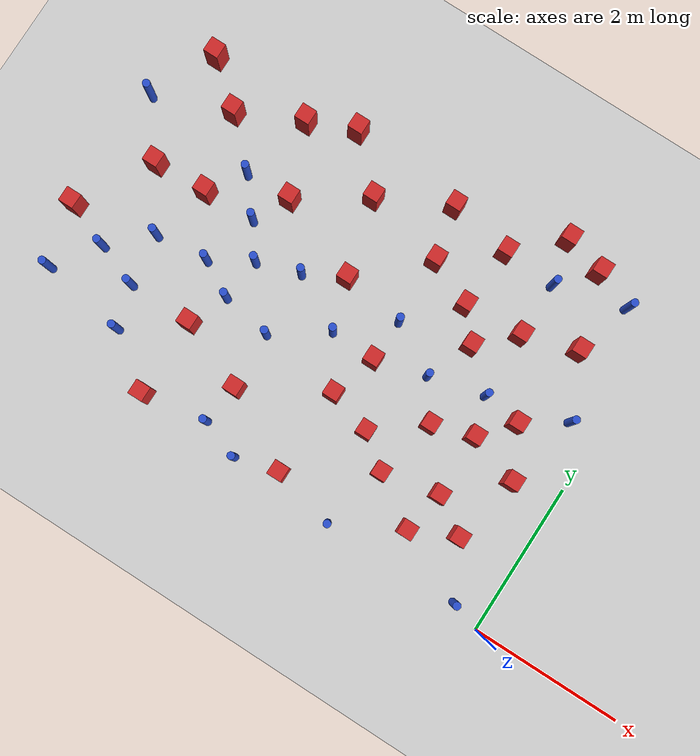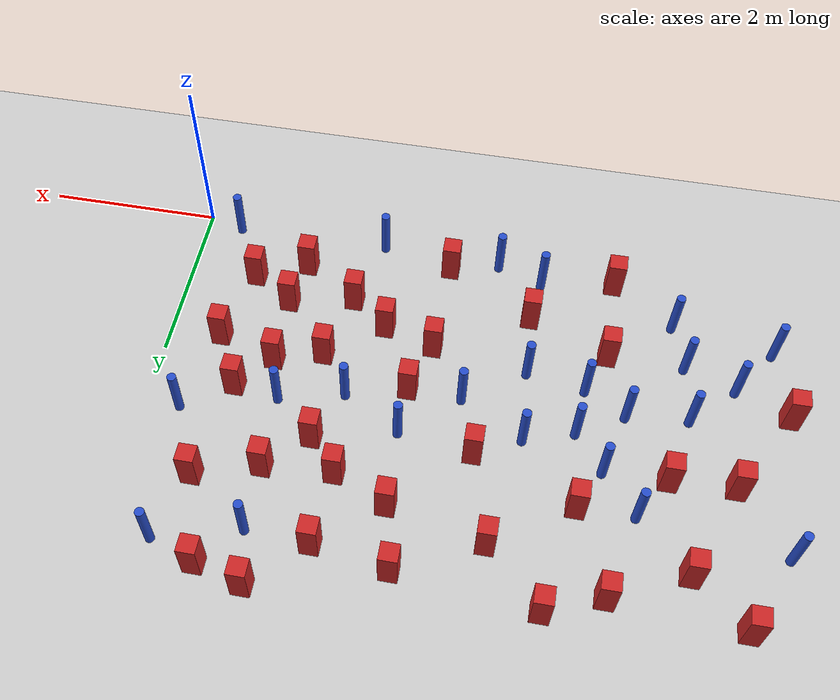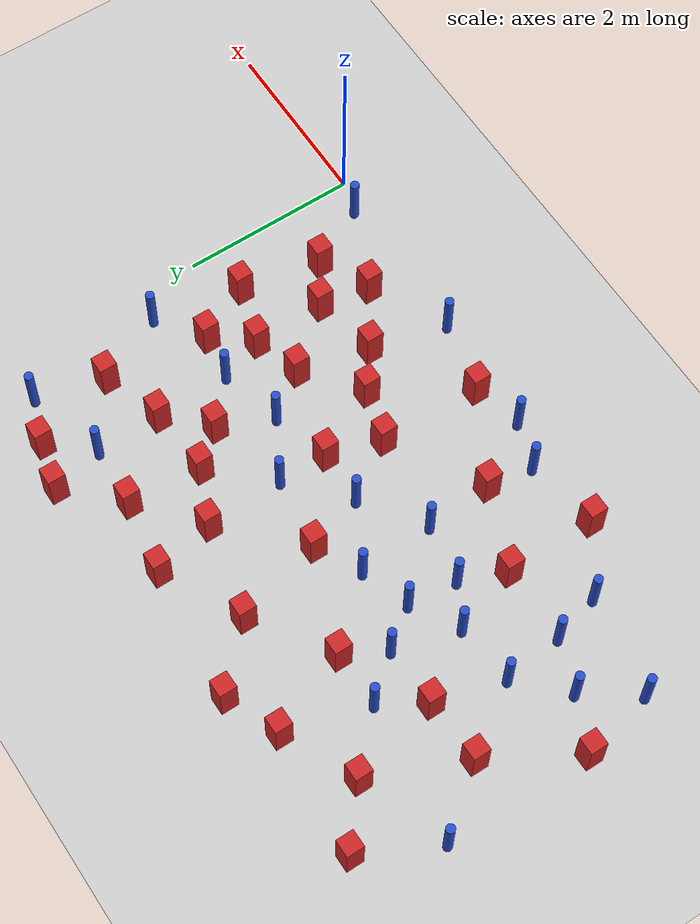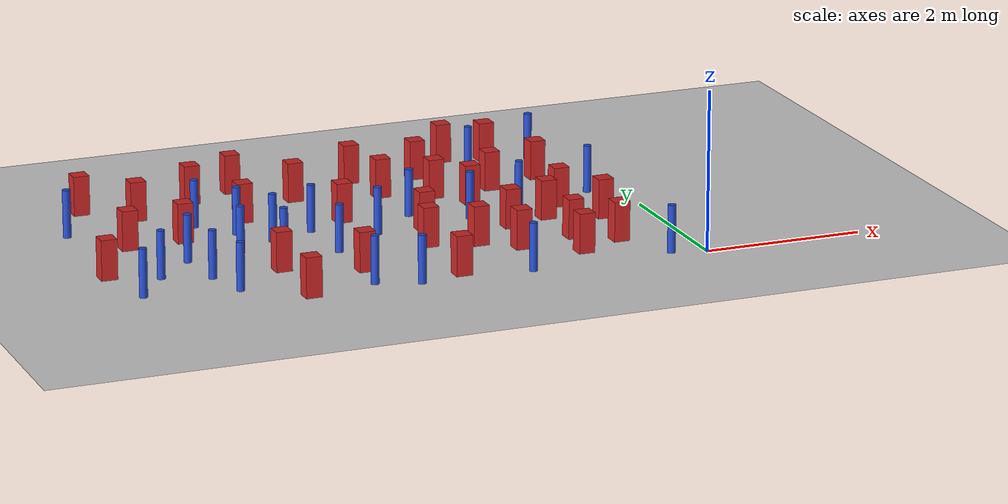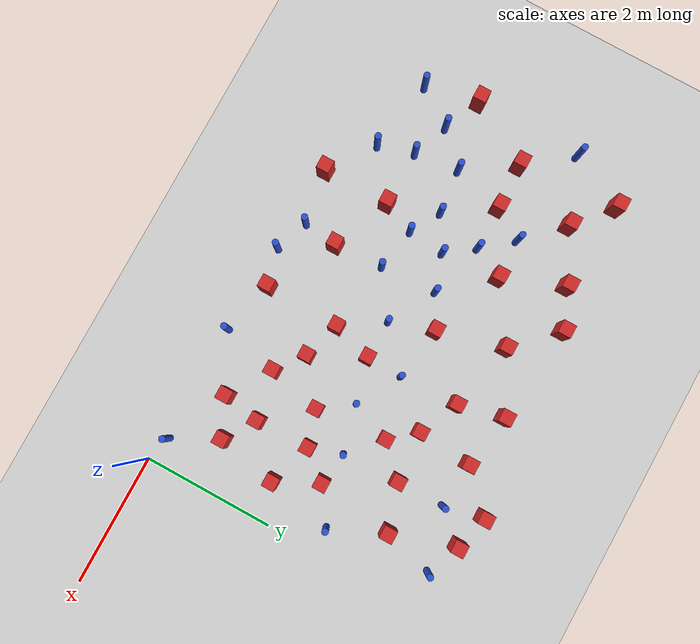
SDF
<sdf version="1.6">
 <world name="default">
  <model name="ground_plane">
   <static>1</static>
   <link name="link">
    <collision name="collision">
     <geometry><plane><normal>0 0 1</normal><size>100 100</size></plane></geometry>
     <surface><friction><ode><mu>100</mu><mu2>50</mu2></ode></friction></surface>
    </collision>
    <visual name="visual">
     <cast_shadows>0</cast_shadows>
     <geometry><plane><normal>0 0 1</normal><size>100 100</size></plane></geometry>
     <material>
      <ambient>1.0 1.0 1.0 1.0</ambient>
      <diffuse>0.8 0.8 0.8 1.0</diffuse>
      <specular>0.01 0.01 0.01 1.000000</specular>
     </material>
    </visual>
   </link>
  </model>
  <model name="square_post_obstacle8">
   <static>true</static>
   <pose>-1.27417712058 1.95908993883 1.91545236811e-07 -7.35059704564e-06 1.12565212e-07 2.39332434364e-05</pose>
   <link name="link">
    <pose>0 0 0.25 0 -0 0</pose>
    <inertial>
     <mass>100</mass>
     <inertia>
      <ixx>0.166667</ixx>
      <ixy>0</ixy>
      <ixz>0</ixz>
      <iyy>0.166667</iyy>
      <iyz>0</iyz>
      <izz>0.166667</izz>
     </inertia>
    </inertial>
    <collision name="collision"><geometry><box><size>.2 .2 .5</size></box></geometry></collision>
    <visual name="visual">
     <geometry><box><size>.2 .2 .5</size></box></geometry>
     <material>
      <script><name>Gazebo/Red</name><uri>file://media/materials/scripts/gazebo.material</uri></script>
     </material>
    </visual>
   </link>
  </model>
  <model name="pole_obstacle7">
   <static>true</static>
   <pose>-6.93572072231 3.38075076219 7.38925637345e-09 -8.47170692798e-08 1.24976764937e-08 -1.74513093023e-07</pose>
   <link name="link">
    <pose>0 0 0.3 0 -0 0</pose>
    <inertial>
     <mass>1</mass>
     <inertia><ixx>0.145833</ixx><ixy>0</ixy><ixz>0</ixz><iyy>0.145833</iyy><iyz>0</iyz><izz>0.125</izz></inertia>
    </inertial>
    <collision name="collision">
     <geometry><cylinder><radius>0.05</radius><length>.6</length></cylinder></geometry>
    </collision>
    <visual name="visual">
     <geometry><cylinder><radius>0.05</radius><length>.6</length></cylinder></geometry>
     <material>
      <script><name>Gazebo/Blue</name><uri>file://media/materials/scripts/gazebo.material</uri></script>
     </material>
    </visual>
   </link>
  </model>
  <model name="square_post_obstacle25">
   <static>true</static>
   <pose>-2.23684656271 3.26121554226 1.91545236811e-07 -7.35059704564e-06 1.12565212e-07 2.39332434364e-05</pose>
   <link name="link">
    <pose>0 0 0.25 0 -0 0</pose>
    <inertial>
     <mass>100</mass>
     <inertia>
      <ixx>0.166667</ixx>
      <ixy>0</ixy>
      <ixz>0</ixz>
      <iyy>0.166667</iyy>
      <iyz>0</iyz>
      <izz>0.166667</izz>
     </inertia>
    </inertial>
    <collision name="collision"><geometry><box><size>.2 .2 .5</size></box></geometry></collision>
    <visual name="visual">
     <geometry><box><size>.2 .2 .5</size></box></geometry>
     <material>
      <script><name>Gazebo/Red</name><uri>file://media/materials/scripts/gazebo.material</uri></script>
     </material>
    </visual>
   </link>
  </model>
  <model name="square_post_obstacle32">
   <static>true</static>
   <pose>-2.8382749133 3.53318739556 1.91545236811e-07 -7.35059704564e-06 1.12565212e-07 2.39332434364e-05</pose>
   <link name="link">
    <pose>0 0 0.25 0 -0 0</pose>
    <inertial>
     <mass>100</mass>
     <inertia>
      <ixx>0.166667</ixx>
      <ixy>0</ixy>
      <ixz>0</ixz>
      <iyy>0.166667</iyy>
      <iyz>0</iyz>
      <izz>0.166667</izz>
     </inertia>
    </inertial>
    <collision name="collision"><geometry><box><size>.2 .2 .5</size></box></geometry></collision>
    <visual name="visual">
     <geometry><box><size>.2 .2 .5</size></box></geometry>
     <material>
      <script><name>Gazebo/Red</name><uri>file://media/materials/scripts/gazebo.material</uri></script>
     </material>
    </visual>
   </link>
  </model>
  <model name="pole_obstacle31">
   <static>true</static>
   <pose>-6.779967507 0.892826970591 7.38925637345e-09 -8.47170692799e-08 1.24976765038e-08 -1.74513093018e-07</pose>
   <link name="link">
    <pose>0 0 0.3 0 -0 0</pose>
    <inertial>
     <mass>1</mass>
     <inertia><ixx>0.145833</ixx><ixy>0</ixy><ixz>0</ixz><iyy>0.145833</iyy><iyz>0</iyz><izz>0.125</izz></inertia>
    </inertial>
    <collision name="collision">
     <geometry><cylinder><radius>0.05</radius><length>.6</length></cylinder></geometry>
    </collision>
    <visual name="visual">
     <geometry><cylinder><radius>0.05</radius><length>.6</length></cylinder></geometry>
     <material>
      <script><name>Gazebo/Blue</name><uri>file://media/materials/scripts/gazebo.material</uri></script>
     </material>
    </visual>
   </link>
  </model>
  <model name="pole_obstacle32">
   <static>true</static>
   <pose>-0.390194337899 2.73719840761 7.38925637345e-09 -8.471706928e-08 1.24976765084e-08 -1.74513093017e-07</pose>
   <link name="link">
    <pose>0 0 0.3 0 -0 0</pose>
    <inertial>
     <mass>1</mass>
     <inertia><ixx>0.145833</ixx><ixy>0</ixy><ixz>0</ixz><iyy>0.145833</iyy><iyz>0</iyz><izz>0.125</izz></inertia>
    </inertial>
    <collision name="collision">
     <geometry><cylinder><radius>0.05</radius><length>.6</length></cylinder></geometry>
    </collision>
    <visual name="visual">
     <geometry><cylinder><radius>0.05</radius><length>.6</length></cylinder></geometry>
     <material>
      <script><name>Gazebo/Blue</name><uri>file://media/materials/scripts/gazebo.material</uri></script>
     </material>
    </visual>
   </link>
  </model>
  <model name="square_post_obstacle41">
   <static>true</static>
   <pose>-4.94955158628 1.25042824308 1.91545236811e-07 -7.35059704564e-06 1.12565212e-07 2.39332434364e-05</pose>
   <link name="link">
    <pose>0 0 0.25 0 -0 0</pose>
    <inertial>
     <mass>100</mass>
     <inertia>
      <ixx>0.166667</ixx>
      <ixy>0</ixy>
      <ixz>0</ixz>
      <iyy>0.166667</iyy>
      <iyz>0</iyz>
      <izz>0.166667</izz>
     </inertia>
    </inertial>
    <collision name="collision"><geometry><box><size>.2 .2 .5</size></box></geometry></collision>
    <visual name="visual">
     <geometry><box><size>.2 .2 .5</size></box></geometry>
     <material>
      <script><name>Gazebo/Red</name><uri>file://media/materials/scripts/gazebo.material</uri></script>
     </material>
    </visual>
   </link>
  </model>
  <model name="pole_obstacle45">
   <static>true</static>
   <pose>-4.68416575472 2.31204584274 7.38925637345e-09 -8.47170692798e-08 1.24976764937e-08 -1.74513093023e-07</pose>
   <link name="link">
    <pose>0 0 0.3 0 -0 0</pose>
    <inertial>
     <mass>1</mass>
     <inertia><ixx>0.145833</ixx><ixy>0</ixy><ixz>0</ixz><iyy>0.145833</iyy><iyz>0</iyz><izz>0.125</izz></inertia>
    </inertial>
    <collision name="collision">
     <geometry><cylinder><radius>0.05</radius><length>.6</length></cylinder></geometry>
    </collision>
    <visual name="visual">
     <geometry><cylinder><radius>0.05</radius><length>.6</length></cylinder></geometry>
     <material>
      <script><name>Gazebo/Blue</name><uri>file://media/materials/scripts/gazebo.material</uri></script>
     </material>
    </visual>
   </link>
  </model>
  <model name="square_post_obstacle43">
   <static>true</static>
   <pose>-1.36037888251 0.567482634678 1.91545236811e-07 -7.35059704564e-06 1.12565212e-07 2.39332434364e-05</pose>
   <link name="link">
    <pose>0 0 0.25 0 -0 0</pose>
    <inertial>
     <mass>100</mass>
     <inertia>
      <ixx>0.166667</ixx>
      <ixy>0</ixy>
      <ixz>0</ixz>
      <iyy>0.166667</iyy>
      <iyz>0</iyz>
      <izz>0.166667</izz>
     </inertia>
    </inertial>
    <collision name="collision"><geometry><box><size>.2 .2 .5</size></box></geometry></collision>
    <visual name="visual">
     <geometry><box><size>.2 .2 .5</size></box></geometry>
     <material>
      <script><name>Gazebo/Red</name><uri>file://media/materials/scripts/gazebo.material</uri></script>
     </material>
    </visual>
   </link>
  </model>
  <model name="square_post_obstacle53">
   <static>true</static>
   <pose>-6.51448656168 4.22937311648 1.91545236811e-07 -7.35059704564e-06 1.12565212e-07 2.39332434364e-05</pose>
   <link name="link">
    <pose>0 0 0.25 0 -0 0</pose>
    <inertial>
     <mass>100</mass>
     <inertia>
      <ixx>0.166667</ixx>
      <ixy>0</ixy>
      <ixz>0</ixz>
      <iyy>0.166667</iyy>
      <iyz>0</iyz>
      <izz>0.166667</izz>
     </inertia>
    </inertial>
    <collision name="collision"><geometry><box><size>.2 .2 .5</size></box></geometry></collision>
    <visual name="visual">
     <geometry><box><size>.2 .2 .5</size></box></geometry>
     <material>
      <script><name>Gazebo/Red</name><uri>file://media/materials/scripts/gazebo.material</uri></script>
     </material>
    </visual>
   </link>
  </model>
  <model name="pole_obstacle51">
   <static>true</static>
   <pose>-4.08297279201 1.63119257298 7.38925637345e-09 -8.471706928e-08 1.24976765134e-08 -1.74513093015e-07</pose>
   <link name="link">
    <pose>0 0 0.3 0 -0 0</pose>
    <inertial>
     <mass>1</mass>
     <inertia><ixx>0.145833</ixx><ixy>0</ixy><ixz>0</ixz><iyy>0.145833</iyy><iyz>0</iyz><izz>0.125</izz></inertia>
    </inertial>
    <collision name="collision">
     <geometry><cylinder><radius>0.05</radius><length>.6</length></cylinder></geometry>
    </collision>
    <visual name="visual">
     <geometry><cylinder><radius>0.05</radius><length>.6</length></cylinder></geometry>
     <material>
      <script><name>Gazebo/Blue</name><uri>file://media/materials/scripts/gazebo.material</uri></script>
     </material>
    </visual>
   </link>
  </model>
  <model name="square_post_obstacle56">
   <static>true</static>
   <pose>-5.94072684718 3.74862928689 1.91545236811e-07 -7.35059704564e-06 1.12565212e-07 2.39332434364e-05</pose>
   <link name="link">
    <pose>0 0 0.25 0 -0 0</pose>
    <inertial>
     <mass>100</mass>
     <inertia>
      <ixx>0.166667</ixx>
      <ixy>0</ixy>
      <ixz>0</ixz>
      <iyy>0.166667</iyy>
      <iyz>0</iyz>
      <izz>0.166667</izz>
     </inertia>
    </inertial>
    <collision name="collision"><geometry><box><size>.2 .2 .5</size></box></geometry></collision>
    <visual name="visual">
     <geometry><box><size>.2 .2 .5</size></box></geometry>
     <material>
      <script><name>Gazebo/Red</name><uri>file://media/materials/scripts/gazebo.material</uri></script>
     </material>
    </visual>
   </link>
  </model>
  <model name="pole_obstacle55">
   <static>true</static>
   <pose>-4.1289250397 2.49557274334 7.38925637345e-09 -8.47170692798e-08 1.24976764937e-08 -1.74513093023e-07</pose>
   <link name="link">
    <pose>0 0 0.3 0 -0 0</pose>
    <inertial>
     <mass>1</mass>
     <inertia><ixx>0.145833</ixx><ixy>0</ixy><ixz>0</ixz><iyy>0.145833</iyy><iyz>0</iyz><izz>0.125</izz></inertia>
    </inertial>
    <collision name="collision">
     <geometry><cylinder><radius>0.05</radius><length>.6</length></cylinder></geometry>
    </collision>
    <visual name="visual">
     <geometry><cylinder><radius>0.05</radius><length>.6</length></cylinder></geometry>
     <material>
      <script><name>Gazebo/Blue</name><uri>file://media/materials/scripts/gazebo.material</uri></script>
     </material>
    </visual>
   </link>
  </model>
  <model name="square_post_obstacle58">
   <static>true</static>
   <pose>-1.99831229838 0.981830670515 1.91545236811e-07 -7.35059704564e-06 1.12565212e-07 2.39332434364e-05</pose>
   <link name="link">
    <pose>0 0 0.25 0 -0 0</pose>
    <inertial>
     <mass>100</mass>
     <inertia>
      <ixx>0.166667</ixx>
      <ixy>0</ixy>
      <ixz>0</ixz>
      <iyy>0.166667</iyy>
      <iyz>0</iyz>
      <izz>0.166667</izz>
     </inertia>
    </inertial>
    <collision name="collision"><geometry><box><size>.2 .2 .5</size></box></geometry></collision>
    <visual name="visual">
     <geometry><box><size>.2 .2 .5</size></box></geometry>
     <material>
      <script><name>Gazebo/Red</name><uri>file://media/materials/scripts/gazebo.material</uri></script>
     </material>
    </visual>
   </link>
  </model>
  <model name="pole_obstacle59">
   <static>true</static>
   <pose>-5.38037622589 3.19111112112 7.38925637345e-09 -8.47170692798e-08 1.24976764937e-08 -1.74513093023e-07</pose>
   <link name="link">
    <pose>0 0 0.3 0 -0 0</pose>
    <inertial>
     <mass>1</mass>
     <inertia><ixx>0.145833</ixx><ixy>0</ixy><ixz>0</ixz><iyy>0.145833</iyy><iyz>0</iyz><izz>0.125</izz></inertia>
    </inertial>
    <collision name="collision">
     <geometry><cylinder><radius>0.05</radius><length>.6</length></cylinder></geometry>
    </collision>
    <visual name="visual">
     <geometry><cylinder><radius>0.05</radius><length>.6</length></cylinder></geometry>
     <material>
      <script><name>Gazebo/Blue</name><uri>file://media/materials/scripts/gazebo.material</uri></script>
     </material>
    </visual>
   </link>
  </model>
  <model name="square_post_obstacle68">
   <static>true</static>
   <pose>-4.75964753927 3.20274390699 1.91545236811e-07 -7.35059704564e-06 1.12565212e-07 2.39332434364e-05</pose>
   <link name="link">
    <pose>0 0 0.25 0 -0 0</pose>
    <inertial>
     <mass>100</mass>
     <inertia>
      <ixx>0.166667</ixx>
      <ixy>0</ixy>
      <ixz>0</ixz>
      <iyy>0.166667</iyy>
      <iyz>0</iyz>
      <izz>0.166667</izz>
     </inertia>
    </inertial>
    <collision name="collision"><geometry><box><size>.2 .2 .5</size></box></geometry></collision>
    <visual name="visual">
     <geometry><box><size>.2 .2 .5</size></box></geometry>
     <material>
      <script><name>Gazebo/Red</name><uri>file://media/materials/scripts/gazebo.material</uri></script>
     </material>
    </visual>
   </link>
  </model>
  <model name="square_post_obstacle69">
   <static>true</static>
   <pose>-1.46908731833 3.31484281986 1.91545236811e-07 -7.35059704564e-06 1.12565212e-07 2.39332434364e-05</pose>
   <link name="link">
    <pose>0 0 0.25 0 -0 0</pose>
    <inertial>
     <mass>100</mass>
     <inertia>
      <ixx>0.166667</ixx>
      <ixy>0</ixy>
      <ixz>0</ixz>
      <iyy>0.166667</iyy>
      <iyz>0</iyz>
      <izz>0.166667</izz>
     </inertia>
    </inertial>
    <collision name="collision"><geometry><box><size>.2 .2 .5</size></box></geometry></collision>
    <visual name="visual">
     <geometry><box><size>.2 .2 .5</size></box></geometry>
     <material>
      <script><name>Gazebo/Red</name><uri>file://media/materials/scripts/gazebo.material</uri></script>
     </material>
    </visual>
   </link>
  </model>
  <model name="pole_obstacle71">
   <static>true</static>
   <pose>-3.59165759009 0.163954399226 7.38925637345e-09 -8.47170692795e-08 1.24976764699e-08 -1.74513093038e-07</pose>
   <link name="link">
    <pose>0 0 0.3 0 -0 0</pose>
    <inertial>
     <mass>1</mass>
     <inertia><ixx>0.145833</ixx><ixy>0</ixy><ixz>0</ixz><iyy>0.145833</iyy><iyz>0</iyz><izz>0.125</izz></inertia>
    </inertial>
    <collision name="collision">
     <geometry><cylinder><radius>0.05</radius><length>.6</length></cylinder></geometry>
    </collision>
    <visual name="visual">
     <geometry><cylinder><radius>0.05</radius><length>.6</length></cylinder></geometry>
     <material>
      <script><name>Gazebo/Blue</name><uri>file://media/materials/scripts/gazebo.material</uri></script>
     </material>
    </visual>
   </link>
  </model>
  <model name="pole_obstacle83">
   <static>true</static>
   <pose>-6.37545821402 1.46282408588 7.38925637345e-09 -8.471706928e-08 1.24976765134e-08 -1.74513093015e-07</pose>
   <link name="link">
    <pose>0 0 0.3 0 -0 0</pose>
    <inertial>
     <mass>1</mass>
     <inertia><ixx>0.145833</ixx><ixy>0</ixy><ixz>0</ixz><iyy>0.145833</iyy><iyz>0</iyz><izz>0.125</izz></inertia>
    </inertial>
    <collision name="collision">
     <geometry><cylinder><radius>0.05</radius><length>.6</length></cylinder></geometry>
    </collision>
    <visual name="visual">
     <geometry><cylinder><radius>0.05</radius><length>.6</length></cylinder></geometry>
     <material>
      <script><name>Gazebo/Blue</name><uri>file://media/materials/scripts/gazebo.material</uri></script>
     </material>
    </visual>
   </link>
  </model>
  <model name="square_post_obstacle81">
   <static>true</static>
   <pose>-5.12431866978 4.13614368996 1.91545236811e-07 -7.35059704564e-06 1.12565212e-07 2.39332434364e-05</pose>
   <link name="link">
    <pose>0 0 0.25 0 -0 0</pose>
    <inertial>
     <mass>100</mass>
     <inertia>
      <ixx>0.166667</ixx>
      <ixy>0</ixy>
      <ixz>0</ixz>
      <iyy>0.166667</iyy>
      <iyz>0</iyz>
      <izz>0.166667</izz>
     </inertia>
    </inertial>
    <collision name="collision"><geometry><box><size>.2 .2 .5</size></box></geometry></collision>
    <visual name="visual">
     <geometry><box><size>.2 .2 .5</size></box></geometry>
     <material>
      <script><name>Gazebo/Red</name><uri>file://media/materials/scripts/gazebo.material</uri></script>
     </material>
    </visual>
   </link>
  </model>
  <model name="pole_obstacle89">
   <static>true</static>
   <pose>-5.80891261165 1.25195978353 7.38925637345e-09 -8.471706928e-08 1.24976765134e-08 -1.74513093015e-07</pose>
   <link name="link">
    <pose>0 0 0.3 0 -0 0</pose>
    <inertial>
     <mass>1</mass>
     <inertia><ixx>0.145833</ixx><ixy>0</ixy><ixz>0</ixz><iyy>0.145833</iyy><iyz>0</iyz><izz>0.125</izz></inertia>
    </inertial>
    <collision name="collision">
     <geometry><cylinder><radius>0.05</radius><length>.6</length></cylinder></geometry>
    </collision>
    <visual name="visual">
     <geometry><cylinder><radius>0.05</radius><length>.6</length></cylinder></geometry>
     <material>
      <script><name>Gazebo/Blue</name><uri>file://media/materials/scripts/gazebo.material</uri></script>
     </material>
    </visual>
   </link>
  </model>
  <model name="square_post_obstacle87">
   <static>true</static>
   <pose>-3.03383741189 0.317120210432 1.91545236811e-07 -7.35059704564e-06 1.12565212e-07 2.39332434364e-05</pose>
   <link name="link">
    <pose>0 0 0.25 0 -0 0</pose>
    <inertial>
     <mass>100</mass>
     <inertia>
      <ixx>0.166667</ixx>
      <ixy>0</ixy>
      <ixz>0</ixz>
      <iyy>0.166667</iyy>
      <iyz>0</iyz>
      <izz>0.166667</izz>
     </inertia>
    </inertial>
    <collision name="collision"><geometry><box><size>.2 .2 .5</size></box></geometry></collision>
    <visual name="visual">
     <geometry><box><size>.2 .2 .5</size></box></geometry>
     <material>
      <script><name>Gazebo/Red</name><uri>file://media/materials/scripts/gazebo.material</uri></script>
     </material>
    </visual>
   </link>
  </model>
  <model name="pole_obstacle105">
   <static>true</static>
   <pose>-4.11240207503 0.348092070362 7.38925637345e-09 -8.47170692798e-08 1.24976765003e-08 -1.7451309302e-07</pose>
   <link name="link">
    <pose>0 0 0.3 0 -0 0</pose>
    <inertial>
     <mass>1</mass>
     <inertia><ixx>0.145833</ixx><ixy>0</ixy><ixz>0</ixz><iyy>0.145833</iyy><iyz>0</iyz><izz>0.125</izz></inertia>
    </inertial>
    <collision name="collision">
     <geometry><cylinder><radius>0.05</radius><length>.6</length></cylinder></geometry>
    </collision>
    <visual name="visual">
     <geometry><cylinder><radius>0.05</radius><length>.6</length></cylinder></geometry>
     <material>
      <script><name>Gazebo/Blue</name><uri>file://media/materials/scripts/gazebo.material</uri></script>
     </material>
    </visual>
   </link>
  </model>
  <model name="square_post_obstacle102">
   <static>true</static>
   <pose>-2.42260441473 1.30474651656 1.91545236811e-07 -7.35059704564e-06 1.12565212e-07 2.39332434364e-05</pose>
   <link name="link">
    <pose>0 0 0.25 0 -0 0</pose>
    <inertial>
     <mass>100</mass>
     <inertia>
      <ixx>0.166667</ixx>
      <ixy>0</ixy>
      <ixz>0</ixz>
      <iyy>0.166667</iyy>
      <iyz>0</iyz>
      <izz>0.166667</izz>
     </inertia>
    </inertial>
    <collision name="collision"><geometry><box><size>.2 .2 .5</size></box></geometry></collision>
    <visual name="visual">
     <geometry><box><size>.2 .2 .5</size></box></geometry>
     <material>
      <script><name>Gazebo/Red</name><uri>file://media/materials/scripts/gazebo.material</uri></script>
     </material>
    </visual>
   </link>
  </model>
  <model name="square_post_obstacle105">
   <static>true</static>
   <pose>-5.68219183796 2.71924126384 1.91545236811e-07 -7.35059704564e-06 1.12565212e-07 2.39332434364e-05</pose>
   <link name="link">
    <pose>0 0 0.25 0 -0 0</pose>
    <inertial>
     <mass>100</mass>
     <inertia>
      <ixx>0.166667</ixx>
      <ixy>0</ixy>
      <ixz>0</ixz>
      <iyy>0.166667</iyy>
      <iyz>0</iyz>
      <izz>0.166667</izz>
     </inertia>
    </inertial>
    <collision name="collision"><geometry><box><size>.2 .2 .5</size></box></geometry></collision>
    <visual name="visual">
     <geometry><box><size>.2 .2 .5</size></box></geometry>
     <material>
      <script><name>Gazebo/Red</name><uri>file://media/materials/scripts/gazebo.material</uri></script>
     </material>
    </visual>
   </link>
  </model>
  <model name="square_post_obstacle111">
   <static>true</static>
   <pose>-4.95074277202 0.219759237341 1.91545236811e-07 -7.35059704564e-06 1.12565212e-07 2.39332434364e-05</pose>
   <link name="link">
    <pose>0 0 0.25 0 -0 0</pose>
    <inertial>
     <mass>100</mass>
     <inertia>
      <ixx>0.166667</ixx>
      <ixy>0</ixy>
      <ixz>0</ixz>
      <iyy>0.166667</iyy>
      <iyz>0</iyz>
      <izz>0.166667</izz>
     </inertia>
    </inertial>
    <collision name="collision"><geometry><box><size>.2 .2 .5</size></box></geometry></collision>
    <visual name="visual">
     <geometry><box><size>.2 .2 .5</size></box></geometry>
     <material>
      <script><name>Gazebo/Red</name><uri>file://media/materials/scripts/gazebo.material</uri></script>
     </material>
    </visual>
   </link>
  </model>
  <model name="pole_obstacle130">
   <static>true</static>
   <pose>-5.20056142101 2.00644084078 7.38925637345e-09 -8.47170692799e-08 1.24976765078e-08 -1.74513093016e-07</pose>
   <link name="link">
    <pose>0 0 0.3 0 -0 0</pose>
    <inertial>
     <mass>1</mass>
     <inertia><ixx>0.145833</ixx><ixy>0</ixy><ixz>0</ixz><iyy>0.145833</iyy><iyz>0</iyz><izz>0.125</izz></inertia>
    </inertial>
    <collision name="collision">
     <geometry><cylinder><radius>0.05</radius><length>.6</length></cylinder></geometry>
    </collision>
    <visual name="visual">
     <geometry><cylinder><radius>0.05</radius><length>.6</length></cylinder></geometry>
     <material>
      <script><name>Gazebo/Blue</name><uri>file://media/materials/scripts/gazebo.material</uri></script>
     </material>
    </visual>
   </link>
  </model>
  <model name="pole_obstacle133">
   <static>true</static>
   <pose>-5.88881388291 1.93447176972 7.38925637345e-09 -8.471706928e-08 1.24976765134e-08 -1.74513093015e-07</pose>
   <link name="link">
    <pose>0 0 0.3 0 -0 0</pose>
    <inertial>
     <mass>1</mass>
     <inertia><ixx>0.145833</ixx><ixy>0</ixy><ixz>0</ixz><iyy>0.145833</iyy><iyz>0</iyz><izz>0.125</izz></inertia>
    </inertial>
    <collision name="collision">
     <geometry><cylinder><radius>0.05</radius><length>.6</length></cylinder></geometry>
    </collision>
    <visual name="visual">
     <geometry><cylinder><radius>0.05</radius><length>.6</length></cylinder></geometry>
     <material>
      <script><name>Gazebo/Blue</name><uri>file://media/materials/scripts/gazebo.material</uri></script>
     </material>
    </visual>
   </link>
  </model>
  <model name="square_post_obstacle115">
   <static>true</static>
   <pose>-1.60137812472 4.6390586968 1.91545236811e-07 -7.35059704564e-06 1.12565212e-07 2.39332434364e-05</pose>
   <link name="link">
    <pose>0 0 0.25 0 -0 0</pose>
    <inertial>
     <mass>100</mass>
     <inertia>
      <ixx>0.166667</ixx>
      <ixy>0</ixy>
      <ixz>0</ixz>
      <iyy>0.166667</iyy>
      <iyz>0</iyz>
      <izz>0.166667</izz>
     </inertia>
    </inertial>
    <collision name="collision"><geometry><box><size>.2 .2 .5</size></box></geometry></collision>
    <visual name="visual">
     <geometry><box><size>.2 .2 .5</size></box></geometry>
     <material>
      <script><name>Gazebo/Red</name><uri>file://media/materials/scripts/gazebo.material</uri></script>
     </material>
    </visual>
   </link>
  </model>
  <model name="pole_obstacle134">
   <static>true</static>
   <pose>-5.65275972308 0.702414177258 7.38925637345e-09 -8.47170692799e-08 1.24976765038e-08 -1.74513093018e-07</pose>
   <link name="link">
    <pose>0 0 0.3 0 -0 0</pose>
    <inertial>
     <mass>1</mass>
     <inertia><ixx>0.145833</ixx><ixy>0</ixy><ixz>0</ixz><iyy>0.145833</iyy><iyz>0</iyz><izz>0.125</izz></inertia>
    </inertial>
    <collision name="collision">
     <geometry><cylinder><radius>0.05</radius><length>.6</length></cylinder></geometry>
    </collision>
    <visual name="visual">
     <geometry><cylinder><radius>0.05</radius><length>.6</length></cylinder></geometry>
     <material>
      <script><name>Gazebo/Blue</name><uri>file://media/materials/scripts/gazebo.material</uri></script>
     </material>
    </visual>
   </link>
  </model>
  <model name="square_post_obstacle118">
   <static>true</static>
   <pose>-3.89975034064 3.7758605596 1.91545236811e-07 -7.35059704564e-06 1.12565212e-07 2.39332434364e-05</pose>
   <link name="link">
    <pose>0 0 0.25 0 -0 0</pose>
    <inertial>
     <mass>100</mass>
     <inertia>
      <ixx>0.166667</ixx>
      <ixy>0</ixy>
      <ixz>0</ixz>
      <iyy>0.166667</iyy>
      <iyz>0</iyz>
      <izz>0.166667</izz>
     </inertia>
    </inertial>
    <collision name="collision"><geometry><box><size>.2 .2 .5</size></box></geometry></collision>
    <visual name="visual">
     <geometry><box><size>.2 .2 .5</size></box></geometry>
     <material>
      <script><name>Gazebo/Red</name><uri>file://media/materials/scripts/gazebo.material</uri></script>
     </material>
    </visual>
   </link>
  </model>
  <model name="pole_obstacle138">
   <static>true</static>
   <pose>-0.411815769686 0.13039345716 7.38925637345e-09 -8.47170692798e-08 1.24976764981e-08 -1.74513093021e-07</pose>
   <link name="link">
    <pose>0 0 0.3 0 -0 0</pose>
    <inertial>
     <mass>1</mass>
     <inertia><ixx>0.145833</ixx><ixy>0</ixy><ixz>0</ixz><iyy>0.145833</iyy><iyz>0</iyz><izz>0.125</izz></inertia>
    </inertial>
    <collision name="collision">
     <geometry><cylinder><radius>0.05</radius><length>.6</length></cylinder></geometry>
    </collision>
    <visual name="visual">
     <geometry><cylinder><radius>0.05</radius><length>.6</length></cylinder></geometry>
     <material>
      <script><name>Gazebo/Blue</name><uri>file://media/materials/scripts/gazebo.material</uri></script>
     </material>
    </visual>
   </link>
  </model>
  <model name="square_post_obstacle119">
   <static>true</static>
   <pose>-0.607063857833 1.74259030479 1.91545236811e-07 -7.35059704564e-06 1.12565212e-07 2.39332434364e-05</pose>
   <link name="link">
    <pose>0 0 0.25 0 -0 0</pose>
    <inertial>
     <mass>100</mass>
     <inertia>
      <ixx>0.166667</ixx>
      <ixy>0</ixy>
      <ixz>0</ixz>
      <iyy>0.166667</iyy>
      <iyz>0</iyz>
      <izz>0.166667</izz>
     </inertia>
    </inertial>
    <collision name="collision"><geometry><box><size>.2 .2 .5</size></box></geometry></collision>
    <visual name="visual">
     <geometry><box><size>.2 .2 .5</size></box></geometry>
     <material>
      <script><name>Gazebo/Red</name><uri>file://media/materials/scripts/gazebo.material</uri></script>
     </material>
    </visual>
   </link>
  </model>
  <model name="pole_obstacle140">
   <static>true</static>
   <pose>-2.14803595851 2.26934922297 7.38925637345e-09 -8.47170692798e-08 1.24976764939e-08 -1.74513093025e-07</pose>
   <link name="link">
    <pose>0 0 0.3 0 -0 0</pose>
    <inertial>
     <mass>1</mass>
     <inertia><ixx>0.145833</ixx><ixy>0</ixy><ixz>0</ixz><iyy>0.145833</iyy><iyz>0</iyz><izz>0.125</izz></inertia>
    </inertial>
    <collision name="collision">
     <geometry><cylinder><radius>0.05</radius><length>.6</length></cylinder></geometry>
    </collision>
    <visual name="visual">
     <geometry><cylinder><radius>0.05</radius><length>.6</length></cylinder></geometry>
     <material>
      <script><name>Gazebo/Blue</name><uri>file://media/materials/scripts/gazebo.material</uri></script>
     </material>
    </visual>
   </link>
  </model>
  <model name="pole_obstacle148">
   <static>true</static>
   <pose>-4.74150420876 1.74801200238 7.38925637345e-09 -8.471706928e-08 1.24976765134e-08 -1.74513093015e-07</pose>
   <link name="link">
    <pose>0 0 0.3 0 -0 0</pose>
    <inertial>
     <mass>1</mass>
     <inertia><ixx>0.145833</ixx><ixy>0</ixy><ixz>0</ixz><iyy>0.145833</iyy><iyz>0</iyz><izz>0.125</izz></inertia>
    </inertial>
    <collision name="collision">
     <geometry><cylinder><radius>0.05</radius><length>.6</length></cylinder></geometry>
    </collision>
    <visual name="visual">
     <geometry><cylinder><radius>0.05</radius><length>.6</length></cylinder></geometry>
     <material>
      <script><name>Gazebo/Blue</name><uri>file://media/materials/scripts/gazebo.material</uri></script>
     </material>
    </visual>
   </link>
  </model>
  <model name="square_post_obstacle137">
   <static>true</static>
   <pose>-0.766089350363 3.53532366267 1.91545236811e-07 -7.35059704564e-06 1.12565212e-07 2.39332434364e-05</pose>
   <link name="link">
    <pose>0 0 0.25 0 -0 0</pose>
    <inertial>
     <mass>100</mass>
     <inertia>
      <ixx>0.166667</ixx>
      <ixy>0</ixy>
      <ixz>0</ixz>
      <iyy>0.166667</iyy>
      <iyz>0</iyz>
      <izz>0.166667</izz>
     </inertia>
    </inertial>
    <collision name="collision"><geometry><box><size>.2 .2 .5</size></box></geometry></collision>
    <visual name="visual">
     <geometry><box><size>.2 .2 .5</size></box></geometry>
     <material>
      <script><name>Gazebo/Red</name><uri>file://media/materials/scripts/gazebo.material</uri></script>
     </material>
    </visual>
   </link>
  </model>
  <model name="square_post_obstacle139">
   <static>true</static>
   <pose>-0.928371545553 2.37487415285 1.91545236811e-07 -7.35059704564e-06 1.12565212e-07 2.39332434364e-05</pose>
   <link name="link">
    <pose>0 0 0.25 0 -0 0</pose>
    <inertial>
     <mass>100</mass>
     <inertia>
      <ixx>0.166667</ixx>
      <ixy>0</ixy>
      <ixz>0</ixz>
      <iyy>0.166667</iyy>
      <iyz>0</iyz>
      <izz>0.166667</izz>
     </inertia>
    </inertial>
    <collision name="collision"><geometry><box><size>.2 .2 .5</size></box></geometry></collision>
    <visual name="visual">
     <geometry><box><size>.2 .2 .5</size></box></geometry>
     <material>
      <script><name>Gazebo/Red</name><uri>file://media/materials/scripts/gazebo.material</uri></script>
     </material>
    </visual>
   </link>
  </model>
  <model name="pole_obstacle155">
   <static>true</static>
   <pose>-1.42769544373 2.4511866898 7.38925637345e-09 -8.47170692799e-08 1.24976765053e-08 -1.74513093017e-07</pose>
   <link name="link">
    <pose>0 0 0.3 0 -0 0</pose>
    <inertial>
     <mass>1</mass>
     <inertia><ixx>0.145833</ixx><ixy>0</ixy><ixz>0</ixz><iyy>0.145833</iyy><iyz>0</iyz><izz>0.125</izz></inertia>
    </inertial>
    <collision name="collision">
     <geometry><cylinder><radius>0.05</radius><length>.6</length></cylinder></geometry>
    </collision>
    <visual name="visual">
     <geometry><cylinder><radius>0.05</radius><length>.6</length></cylinder></geometry>
     <material>
      <script><name>Gazebo/Blue</name><uri>file://media/materials/scripts/gazebo.material</uri></script>
     </material>
    </visual>
   </link>
  </model>
  <model name="square_post_obstacle147">
   <static>true</static>
   <pose>-1.25970615791 1.13552559569 1.91545236811e-07 -7.35059704564e-06 1.12565212e-07 2.39332434364e-05</pose>
   <link name="link">
    <pose>0 0 0.25 0 -0 0</pose>
    <inertial>
     <mass>100</mass>
     <inertia>
      <ixx>0.166667</ixx>
      <ixy>0</ixy>
      <ixz>0</ixz>
      <iyy>0.166667</iyy>
      <iyz>0</iyz>
      <izz>0.166667</izz>
     </inertia>
    </inertial>
    <collision name="collision"><geometry><box><size>.2 .2 .5</size></box></geometry></collision>
    <visual name="visual">
     <geometry><box><size>.2 .2 .5</size></box></geometry>
     <material>
      <script><name>Gazebo/Red</name><uri>file://media/materials/scripts/gazebo.material</uri></script>
     </material>
    </visual>
   </link>
  </model>
  <model name="pole_obstacle157">
   <static>true</static>
   <pose>-1.46483767742 4.04813878988 7.38925637345e-09 -8.47170692799e-08 1.24976765024e-08 -1.7451309302e-07</pose>
   <link name="link">
    <pose>0 0 0.3 0 -0 0</pose>
    <inertial>
     <mass>1</mass>
     <inertia><ixx>0.145833</ixx><ixy>0</ixy><ixz>0</ixz><iyy>0.145833</iyy><iyz>0</iyz><izz>0.125</izz></inertia>
    </inertial>
    <collision name="collision">
     <geometry><cylinder><radius>0.05</radius><length>.6</length></cylinder></geometry>
    </collision>
    <visual name="visual">
     <geometry><cylinder><radius>0.05</radius><length>.6</length></cylinder></geometry>
     <material>
      <script><name>Gazebo/Blue</name><uri>file://media/materials/scripts/gazebo.material</uri></script>
     </material>
    </visual>
   </link>
  </model>
  <model name="pole_obstacle161">
   <static>true</static>
   <pose>-2.80147858008 2.64298899647 7.38925637345e-09 -8.47170692798e-08 1.24976764939e-08 -1.74513093025e-07</pose>
   <link name="link">
    <pose>0 0 0.3 0 -0 0</pose>
    <inertial>
     <mass>1</mass>
     <inertia><ixx>0.145833</ixx><ixy>0</ixy><ixz>0</ixz><iyy>0.145833</iyy><iyz>0</iyz><izz>0.125</izz></inertia>
    </inertial>
    <collision name="collision">
     <geometry><cylinder><radius>0.05</radius><length>.6</length></cylinder></geometry>
    </collision>
    <visual name="visual">
     <geometry><cylinder><radius>0.05</radius><length>.6</length></cylinder></geometry>
     <material>
      <script><name>Gazebo/Blue</name><uri>file://media/materials/scripts/gazebo.material</uri></script>
     </material>
    </visual>
   </link>
  </model>
  <model name="square_post_obstacle159">
   <static>true</static>
   <pose>-4.51442177253 4.38726075492 1.91545236811e-07 -7.35059704564e-06 1.12565212e-07 2.39332434364e-05</pose>
   <link name="link">
    <pose>0 0 0.25 0 -0 0</pose>
    <inertial>
     <mass>100</mass>
     <inertia>
      <ixx>0.166667</ixx>
      <ixy>0</ixy>
      <ixz>0</ixz>
      <iyy>0.166667</iyy>
      <iyz>0</iyz>
      <izz>0.166667</izz>
     </inertia>
    </inertial>
    <collision name="collision"><geometry><box><size>.2 .2 .5</size></box></geometry></collision>
    <visual name="visual">
     <geometry><box><size>.2 .2 .5</size></box></geometry>
     <material>
      <script><name>Gazebo/Red</name><uri>file://media/materials/scripts/gazebo.material</uri></script>
     </material>
    </visual>
   </link>
  </model>
  <model name="square_post_obstacle161">
   <static>true</static>
   <pose>-6.95839806517 1.7165020277 1.91545236811e-07 -7.35059704564e-06 1.12565212e-07 2.39332434364e-05</pose>
   <link name="link">
    <pose>0 0 0.25 0 -0 0</pose>
    <inertial>
     <mass>100</mass>
     <inertia>
      <ixx>0.166667</ixx>
      <ixy>0</ixy>
      <ixz>0</ixz>
      <iyy>0.166667</iyy>
      <iyz>0</iyz>
      <izz>0.166667</izz>
     </inertia>
    </inertial>
    <collision name="collision"><geometry><box><size>.2 .2 .5</size></box></geometry></collision>
    <visual name="visual">
     <geometry><box><size>.2 .2 .5</size></box></geometry>
     <material>
      <script><name>Gazebo/Red</name><uri>file://media/materials/scripts/gazebo.material</uri></script>
     </material>
    </visual>
   </link>
  </model>
  <model name="square_post_obstacle163">
   <static>true</static>
   <pose>-2.81893907566 2.08670901134 1.91545236811e-07 -7.35059704564e-06 1.12565212e-07 2.39332434364e-05</pose>
   <link name="link">
    <pose>0 0 0.25 0 -0 0</pose>
    <inertial>
     <mass>100</mass>
     <inertia>
      <ixx>0.166667</ixx>
      <ixy>0</ixy>
      <ixz>0</ixz>
      <iyy>0.166667</iyy>
      <iyz>0</iyz>
      <izz>0.166667</izz>
     </inertia>
    </inertial>
    <collision name="collision"><geometry><box><size>.2 .2 .5</size></box></geometry></collision>
    <visual name="visual">
     <geometry><box><size>.2 .2 .5</size></box></geometry>
     <material>
      <script><name>Gazebo/Red</name><uri>file://media/materials/scripts/gazebo.material</uri></script>
     </material>
    </visual>
   </link>
  </model>
  <model name="square_post_obstacle165">
   <static>true</static>
   <pose>-1.80900161732 1.79350584391 1.91545236811e-07 -7.35059704564e-06 1.12565212e-07 2.39332434364e-05</pose>
   <link name="link">
    <pose>0 0 0.25 0 -0 0</pose>
    <inertial>
     <mass>100</mass>
     <inertia>
      <ixx>0.166667</ixx>
      <ixy>0</ixy>
      <ixz>0</ixz>
      <iyy>0.166667</iyy>
      <iyz>0</iyz>
      <izz>0.166667</izz>
     </inertia>
    </inertial>
    <collision name="collision"><geometry><box><size>.2 .2 .5</size></box></geometry></collision>
    <visual name="visual">
     <geometry><box><size>.2 .2 .5</size></box></geometry>
     <material>
      <script><name>Gazebo/Red</name><uri>file://media/materials/scripts/gazebo.material</uri></script>
     </material>
    </visual>
   </link>
  </model>
  <model name="square_post_obstacle170">
   <static>true</static>
   <pose>-3.00014298583 1.4790439933 1.91545236811e-07 -7.35059704564e-06 1.12565212e-07 2.39332434364e-05</pose>
   <link name="link">
    <pose>0 0 0.25 0 -0 0</pose>
    <inertial>
     <mass>100</mass>
     <inertia>
      <ixx>0.166667</ixx>
      <ixy>0</ixy>
      <ixz>0</ixz>
      <iyy>0.166667</iyy>
      <iyz>0</iyz>
      <izz>0.166667</izz>
     </inertia>
    </inertial>
    <collision name="collision"><geometry><box><size>.2 .2 .5</size></box></geometry></collision>
    <visual name="visual">
     <geometry><box><size>.2 .2 .5</size></box></geometry>
     <material>
      <script><name>Gazebo/Red</name><uri>file://media/materials/scripts/gazebo.material</uri></script>
     </material>
    </visual>
   </link>
  </model>
  <model name="pole_obstacle186">
   <static>true</static>
   <pose>-0.544339957635 4.30363521772 7.38925637345e-09 -8.471706928e-08 1.24976765117e-08 -1.74513093013e-07</pose>
   <link name="link">
    <pose>0 0 0.3 0 -0 0</pose>
    <inertial>
     <mass>1</mass>
     <inertia><ixx>0.145833</ixx><ixy>0</ixy><ixz>0</ixz><iyy>0.145833</iyy><iyz>0</iyz><izz>0.125</izz></inertia>
    </inertial>
    <collision name="collision">
     <geometry><cylinder><radius>0.05</radius><length>.6</length></cylinder></geometry>
    </collision>
    <visual name="visual">
     <geometry><cylinder><radius>0.05</radius><length>.6</length></cylinder></geometry>
     <material>
      <script><name>Gazebo/Blue</name><uri>file://media/materials/scripts/gazebo.material</uri></script>
     </material>
    </visual>
   </link>
  </model>
  <model name="square_post_obstacle177">
   <static>true</static>
   <pose>-0.790632125509 0.832080361234 1.91545236811e-07 -7.35059704564e-06 1.12565212e-07 2.39332434364e-05</pose>
   <link name="link">
    <pose>0 0 0.25 0 -0 0</pose>
    <inertial>
     <mass>100</mass>
     <inertia>
      <ixx>0.166667</ixx>
      <ixy>0</ixy>
      <ixz>0</ixz>
      <iyy>0.166667</iyy>
      <iyz>0</iyz>
      <izz>0.166667</izz>
     </inertia>
    </inertial>
    <collision name="collision"><geometry><box><size>.2 .2 .5</size></box></geometry></collision>
    <visual name="visual">
     <geometry><box><size>.2 .2 .5</size></box></geometry>
     <material>
      <script><name>Gazebo/Red</name><uri>file://media/materials/scripts/gazebo.material</uri></script>
     </material>
    </visual>
   </link>
  </model>
  <model name="square_post_obstacle181">
   <static>true</static>
   <pose>-6.39018641382 2.68908246503 1.91545236811e-07 -7.35059704564e-06 1.12565212e-07 2.39332434364e-05</pose>
   <link name="link">
    <pose>0 0 0.25 0 -0 0</pose>
    <inertial>
     <mass>100</mass>
     <inertia>
      <ixx>0.166667</ixx>
      <ixy>0</ixy>
      <ixz>0</ixz>
      <iyy>0.166667</iyy>
      <iyz>0</iyz>
      <izz>0.166667</izz>
     </inertia>
    </inertial>
    <collision name="collision"><geometry><box><size>.2 .2 .5</size></box></geometry></collision>
    <visual name="visual">
     <geometry><box><size>.2 .2 .5</size></box></geometry>
     <material>
      <script><name>Gazebo/Red</name><uri>file://media/materials/scripts/gazebo.material</uri></script>
     </material>
    </visual>
   </link>
  </model>
  <model name="square_post_obstacle183">
   <static>true</static>
   <pose>-3.63035342403 2.76278140026 1.91545236811e-07 -7.35059704564e-06 1.12565212e-07 2.39332434364e-05</pose>
   <link name="link">
    <pose>0 0 0.25 0 -0 0</pose>
    <inertial>
     <mass>100</mass>
     <inertia>
      <ixx>0.166667</ixx>
      <ixy>0</ixy>
      <ixz>0</ixz>
      <iyy>0.166667</iyy>
      <iyz>0</iyz>
      <izz>0.166667</izz>
     </inertia>
    </inertial>
    <collision name="collision"><geometry><box><size>.2 .2 .5</size></box></geometry></collision>
    <visual name="visual">
     <geometry><box><size>.2 .2 .5</size></box></geometry>
     <material>
      <script><name>Gazebo/Red</name><uri>file://media/materials/scripts/gazebo.material</uri></script>
     </material>
    </visual>
   </link>
  </model>
  <model name="square_post_obstacle194">
   <static>true</static>
   <pose>-4.04023253606 0.881566127535 1.91545236811e-07 -7.35059704564e-06 1.12565212e-07 2.39332434364e-05</pose>
   <link name="link">
    <pose>0 0 0.25 0 -0 0</pose>
    <inertial>
     <mass>100</mass>
     <inertia>
      <ixx>0.166667</ixx>
      <ixy>0</ixy>
      <ixz>0</ixz>
      <iyy>0.166667</iyy>
      <iyz>0</iyz>
      <izz>0.166667</izz>
     </inertia>
    </inertial>
    <collision name="collision"><geometry><box><size>.2 .2 .5</size></box></geometry></collision>
    <visual name="visual">
     <geometry><box><size>.2 .2 .5</size></box></geometry>
     <material>
      <script><name>Gazebo/Red</name><uri>file://media/materials/scripts/gazebo.material</uri></script>
     </material>
    </visual>
   </link>
  </model>
  <model name="square_post_obstacle199">
   <static>true</static>
   <pose>-2.16803647812 4.09037017989 1.91545236811e-07 -7.35059704564e-06 1.12565212e-07 2.39332434364e-05</pose>
   <link name="link">
    <pose>0 0 0.25 0 -0 0</pose>
    <inertial>
     <mass>100</mass>
     <inertia>
      <ixx>0.166667</ixx>
      <ixy>0</ixy>
      <ixz>0</ixz>
      <iyy>0.166667</iyy>
      <iyz>0</iyz>
      <izz>0.166667</izz>
     </inertia>
    </inertial>
    <collision name="collision"><geometry><box><size>.2 .2 .5</size></box></geometry></collision>
    <visual name="visual">
     <geometry><box><size>.2 .2 .5</size></box></geometry>
     <material>
      <script><name>Gazebo/Red</name><uri>file://media/materials/scripts/gazebo.material</uri></script>
     </material>
    </visual>
   </link>
  </model>
  <model name="pole_obstacle217">
   <static>true</static>
   <pose>-2.20403596627 0.108611849694 7.38925637345e-09 -8.47170692794e-08 1.24976764492e-08 -1.74513093038e-07</pose>
   <link name="link">
    <pose>0 0 0.3 0 -0 0</pose>
    <inertial>
     <mass>1</mass>
     <inertia><ixx>0.145833</ixx><ixy>0</ixy><ixz>0</ixz><iyy>0.145833</iyy><iyz>0</iyz><izz>0.125</izz></inertia>
    </inertial>
    <collision name="collision">
     <geometry><cylinder><radius>0.05</radius><length>.6</length></cylinder></geometry>
    </collision>
    <visual name="visual">
     <geometry><cylinder><radius>0.05</radius><length>.6</length></cylinder></geometry>
     <material>
      <script><name>Gazebo/Blue</name><uri>file://media/materials/scripts/gazebo.material</uri></script>
     </material>
    </visual>
   </link>
  </model>
  <model name="pole_obstacle219">
   <static>true</static>
   <pose>-4.99940748421 2.73428385731 7.38925637345e-09 -8.47170692798e-08 1.24976764937e-08 -1.74513093023e-07</pose>
   <link name="link">
    <pose>0 0 0.3 0 -0 0</pose>
    <inertial>
     <mass>1</mass>
     <inertia><ixx>0.145833</ixx><ixy>0</ixy><ixz>0</ixz><iyy>0.145833</iyy><iyz>0</iyz><izz>0.125</izz></inertia>
    </inertial>
    <collision name="collision">
     <geometry><cylinder><radius>0.05</radius><length>.6</length></cylinder></geometry>
    </collision>
    <visual name="visual">
     <geometry><cylinder><radius>0.05</radius><length>.6</length></cylinder></geometry>
     <material>
      <script><name>Gazebo/Blue</name><uri>file://media/materials/scripts/gazebo.material</uri></script>
     </material>
    </visual>
   </link>
  </model>
  <model name="pole_obstacle223">
   <static>true</static>
   <pose>-3.41481530006 2.10087202301 7.38925637345e-09 -8.47170692798e-08 1.24976764939e-08 -1.74513093025e-07</pose>
   <link name="link">
    <pose>0 0 0.3 0 -0 0</pose>
    <inertial>
     <mass>1</mass>
     <inertia><ixx>0.145833</ixx><ixy>0</ixy><ixz>0</ixz><iyy>0.145833</iyy><iyz>0</iyz><izz>0.125</izz></inertia>
    </inertial>
    <collision name="collision">
     <geometry><cylinder><radius>0.05</radius><length>.6</length></cylinder></geometry>
    </collision>
    <visual name="visual">
     <geometry><cylinder><radius>0.05</radius><length>.6</length></cylinder></geometry>
     <material>
      <script><name>Gazebo/Blue</name><uri>file://media/materials/scripts/gazebo.material</uri></script>
     </material>
    </visual>
   </link>
  </model>
  <model name="square_post_obstacle203">
   <static>true</static>
   <pose>-1.07017462296 4.49868451062 1.91545236811e-07 -7.35059704564e-06 1.12565212e-07 2.39332434364e-05</pose>
   <link name="link">
    <pose>0 0 0.25 0 -0 0</pose>
    <inertial>
     <mass>100</mass>
     <inertia>
      <ixx>0.166667</ixx>
      <ixy>0</ixy>
      <ixz>0</ixz>
      <iyy>0.166667</iyy>
      <iyz>0</iyz>
      <izz>0.166667</izz>
     </inertia>
    </inertial>
    <collision name="collision"><geometry><box><size>.2 .2 .5</size></box></geometry></collision>
    <visual name="visual">
     <geometry><box><size>.2 .2 .5</size></box></geometry>
     <material>
      <script><name>Gazebo/Red</name><uri>file://media/materials/scripts/gazebo.material</uri></script>
     </material>
    </visual>
   </link>
  </model>
  <model name="square_post_obstacle213">
   <static>true</static>
   <pose>-1.90697956994 2.87843855283 1.91545236811e-07 -7.35059704564e-06 1.12565212e-07 2.39332434364e-05</pose>
   <link name="link">
    <pose>0 0 0.25 0 -0 0</pose>
    <inertial>
     <mass>100</mass>
     <inertia>
      <ixx>0.166667</ixx>
      <ixy>0</ixy>
      <ixz>0</ixz>
      <iyy>0.166667</iyy>
      <iyz>0</iyz>
      <izz>0.166667</izz>
     </inertia>
    </inertial>
    <collision name="collision"><geometry><box><size>.2 .2 .5</size></box></geometry></collision>
    <visual name="visual">
     <geometry><box><size>.2 .2 .5</size></box></geometry>
     <material>
      <script><name>Gazebo/Red</name><uri>file://media/materials/scripts/gazebo.material</uri></script>
     </material>
    </visual>
   </link>
  </model>
  <model name="square_post_obstacle221">
   <static>true</static>
   <pose>-2.9985300352 4.22963998808 1.91545236811e-07 -7.35059704564e-06 1.12565212e-07 2.39332434364e-05</pose>
   <link name="link">
    <pose>0 0 0.25 0 -0 0</pose>
    <inertial>
     <mass>100</mass>
     <inertia>
      <ixx>0.166667</ixx>
      <ixy>0</ixy>
      <ixz>0</ixz>
      <iyy>0.166667</iyy>
      <iyz>0</iyz>
      <izz>0.166667</izz>
     </inertia>
    </inertial>
    <collision name="collision"><geometry><box><size>.2 .2 .5</size></box></geometry></collision>
    <visual name="visual">
     <geometry><box><size>.2 .2 .5</size></box></geometry>
     <material>
      <script><name>Gazebo/Red</name><uri>file://media/materials/scripts/gazebo.material</uri></script>
     </material>
    </visual>
   </link>
  </model>
 </world>
</sdf>
